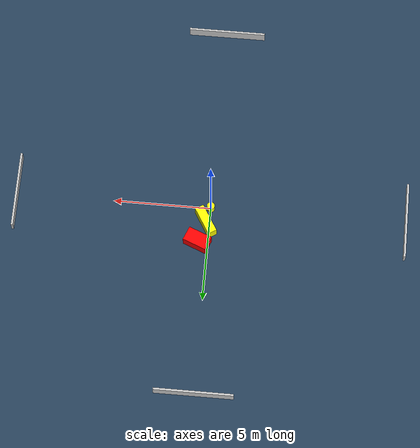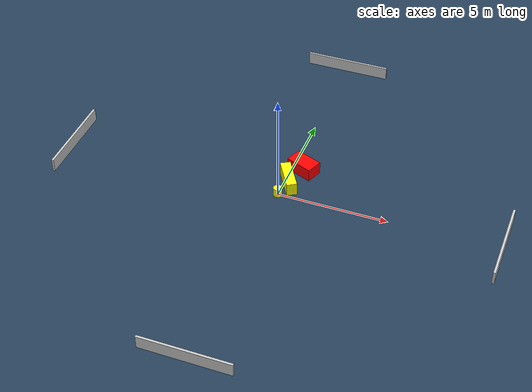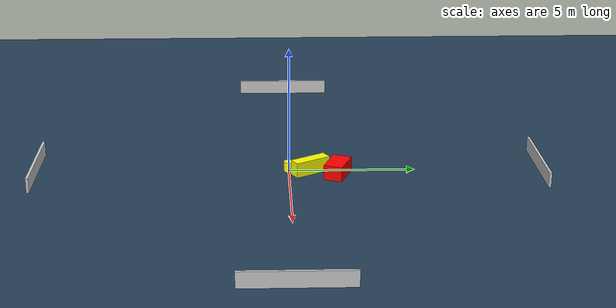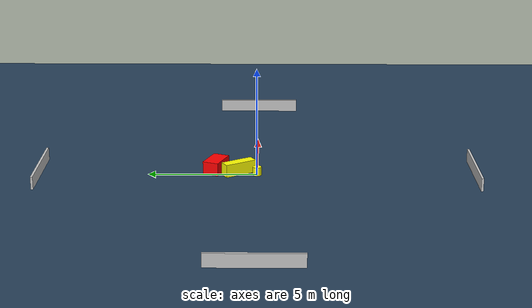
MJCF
<?xml version="1.0" ?>
<mujoco model="generated_environment">
  <option timestep="0.01" integrator="RK4" cone="elliptic"/>
  <default>
    <geom density="1"/>
  </default>
  <asset>
    <texture builtin="gradient" height="3072" name="skybox" rgb1="0.3 0.5 0.7" rgb2="0 0 0" type="skybox" width="512"/>
    <texture builtin="checker" height="300" name="groundplane" rgb1="0.2 0.3 0.4" rgb2="0.1 0.2 0.3" type="2d" width="300"/>
    <material name="groundplane" reflectance="0.2" texrepeat="5 5" texture="groundplane"/>
  </asset>
  <worldbody>
    <light dir="0 0 -1" directional="true" pos="0 0 1.5"/>
    <geom condim="3" friction="0.5 0.005 0.001" material="groundplane" name="floor" pos="0 0 0" size="0 0 0.05" type="plane"/>
    <body name="walls">
      <geom name="wall_1" condim="4" pos="-10.0 0.0 0.3" rgba="0.800000011920929 0.800000011920929 0.800000011920929 1.0" size="0.05 2.0 0.3" type="box"/>
      <geom name="wall_2" condim="4" pos="10.0 0.0 0.3" rgba="0.800000011920929 0.800000011920929 0.800000011920929 1.0" size="0.05 2.0 0.3" type="box"/>
      <geom name="wall_3" condim="4" pos="0.0 -10.0 0.3" rgba="0.800000011920929 0.800000011920929 0.800000011920929 1.0" size="2.0 0.05 0.3" type="box"/>
      <geom name="wall_4" condim="4" pos="0.0 10.0 0.3" rgba="0.800000011920929 0.800000011920929 0.800000011920929 1.0" size="2.0 0.05 0.3" type="box"/>
    </body>
    <body name="robot">
      <joint name="joint_x" type="slide" pos="0 0 0" axis="1 0 0"/>
      <joint name="joint_y" type="slide" pos="0 0 0" axis="0 1 0"/>
      <geom name="robot" type="cylinder" pos="0.0 0.0 0.2" size="0.2 0.2 0.0" mass="5.0" friction="1.0 0.005 0.0001" condim="4" rgba="1.0 1.0 0.0 1.0"/>
    </body>
    <body name="obstacle_1_movable">
      <geom name="obstacle_1_movable" condim="4" pos="0.18781363742476767 0.8496560281325344 0.3" euler="0 0 210.9335220320882" friction="0.0 0.005 0.001" rgba="1.0 1.0 0.0 1.0" size="0.23344439593800767 0.7655824862174216 0.3" type="box" mass="0.1"/>
      <joint type="free"/>
    </body>
    <body name="obstacle_2_static">
      <geom name="obstacle_2_static" condim="4" pos="0.5291985247892536 1.9134297469229027 0.3" euler="0 0 68.02637365367949" friction="0.0 0.005 0.001" rgba="1.0 0.0 0.0 1.0" size="0.37507274289070314 0.6301843935818485 0.3" type="box"/>
    </body>
  </worldbody>
  <actuator>
    <motor name="actuator_x" joint="joint_x" gear="1" ctrlrange="-1 1"/>
    <motor name="actuator_y" joint="joint_y" gear="1" ctrlrange="-1 1"/>
  </actuator>
</mujoco>
